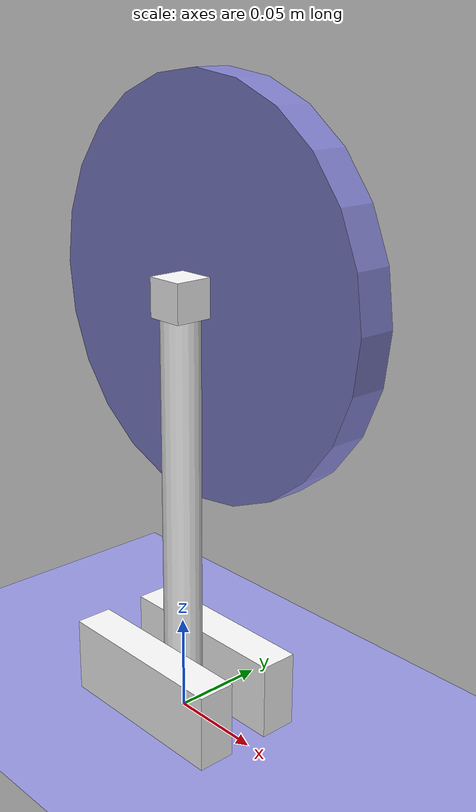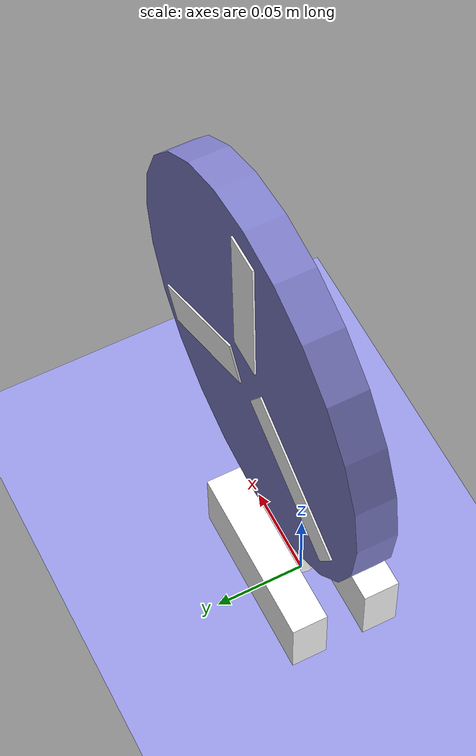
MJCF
<mujoco>
    <asset>
        <texture name="grid" type="2d" builtin="checker" width="512" height="512" rgb1=".9 .9 .9" rgb2=".3 .3 .9"/>
        <material name="grid" texture="grid" texrepeat="1 1" texuniform="true" reflectance=".2"/>
    </asset>

    <worldbody>
        <light diffuse=".8 .8 .8" pos="0 .3 3" dir="0 0 -1" />
        <geom type="plane" size="1 1 .1" material="grid" />

        <!-- Fixed gear body -->
        <body name="stand" pos="0 0 0">
            <geom type="box" size=".05 .01 .02" pos="0 -.021 .02" rgba="1 1 1 1" />
            <geom type="box" size=".05 .01 .02" pos="0 .021 .02" rgba="1 1 1 1" />
            <body name="pend_arm" pos="0 0 .015">
                <geom name="arm" type="capsule" size=".01" fromto="0 0 0 0 0 0.207" rgba="1 1 1 1" />
                <joint type="hinge" name="axis" axis="0 1 0" pos="0 0 0" damping="0.00001" limited="true" range="-30 30" />
                <geom type="box" size=".01 .01 .01" pos="0 0 0.207" rgba="1 1 1 1" mass=""/>

                <body name="wheel" pos="0 0.02 0.207">
                    <!-- Central cylinder representing the wheel -->
                    <geom type="cylinder" size="0.105 0.01" rgba=".5 .5 .8 1" euler="90 0 0"/>

                    <!-- Spokes -->
                    <geom type="box" size="0.01 0.001 0.04" pos="0 0.01 0.05" euler="0 0 0" rgba="1 1 1 1"/>
                    <geom type="box" size="0.01 0.001 0.04" pos=".045 0.01 -0.03" euler="0 120 0" rgba="1 1 1 1"/>
                    <geom type="box" size="0.01 0.001 0.04" pos="-.045 0.01 -0.03" euler="0 -120 0" rgba="1 1 1 1"/>

                    <!-- Revolute joint for wheel rotation -->
                    <joint name="wheel_rot" type="hinge" pos="0 0 0" axis="0 1 0" damping=".001"/>

                    <camera name="wheel_cam" pos="0 0.5 0" zaxis="0 1 0" fovy="45" mode="trackcom" />
                </body>
            </body>
        </body>
    </worldbody>

    <actuator>
        <!-- Agregar medidas en el slider (-a, a) -->
        <motor gear="10" joint="wheel_rot" name="motor"/>
    </actuator>

    <sensor>
        <jointvel name="theta_dot" joint="wheel_rot" />
    </sensor>
</mujoco>
